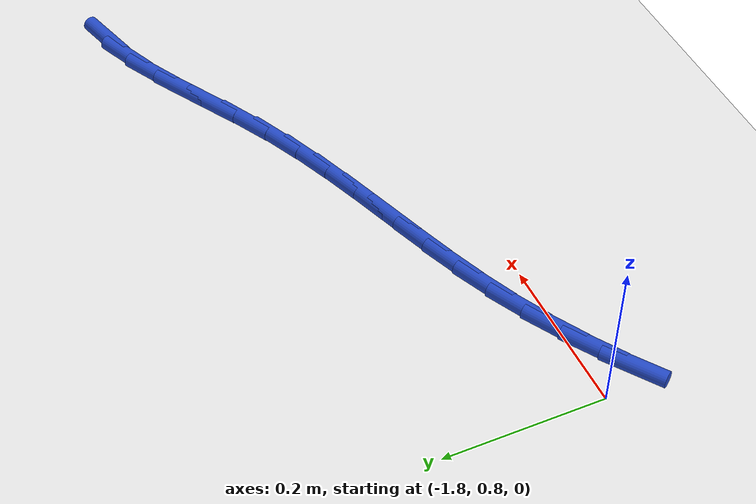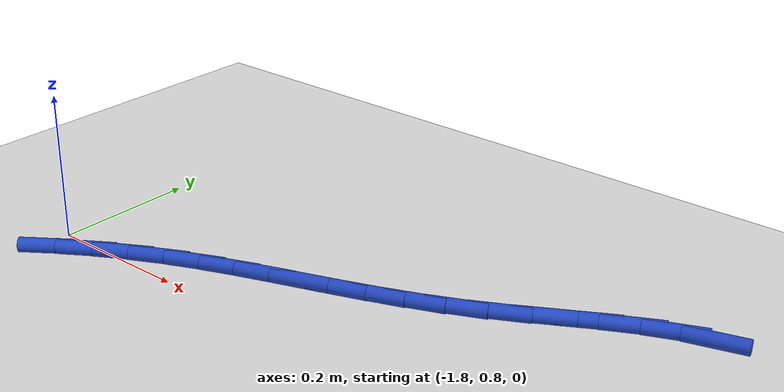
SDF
<sdf version="1.6">
 <world name="default">
  <model name="ground_plane">
   <static>1</static>
   <link name="link">
    <collision name="collision">
     <geometry><plane><normal>0 0 1</normal><size>100 100</size></plane></geometry>
     <surface><friction><ode><mu>100</mu><mu2>50</mu2></ode></friction></surface>
    </collision>
    <visual name="visual">
     <cast_shadows>0</cast_shadows>
     <geometry><plane><normal>0 0 1</normal><size>100 100</size></plane></geometry>
     <material>
      <script><uri>file://media/materials/scripts/gazebo.material</uri><name>Gazebo/WhiteGlow</name></script>
     </material>
    </visual>
   </link>
  </model>
  <model name="line">
   <link name="link_32">
    <pose>-1.0057121970503786 1.1083668834894598 0.01 0 1.57 0.28189544279777</pose>
    <collision name="collision">
     <geometry><cylinder><radius>0.01</radius><length>0.08</length></cylinder></geometry>
    </collision>
    <visual name="visual">
     <material>
      <script><name>Gazebo/Blue</name><uri>file://media/materials/scripts/gazebo.material</uri></script>
     </material>
     <geometry><cylinder><radius>0.01</radius><length>0.08</length></cylinder></geometry>
    </visual>
   </link>
   <link name="link_33">
    <pose>-1.0504984117781844 1.095396454453954 0.01 0 1.57 0.4111525332569541</pose>
    <collision name="collision">
     <geometry><cylinder><radius>0.01</radius><length>0.08</length></cylinder></geometry>
    </collision>
    <visual name="visual">
     <material>
      <script><name>Gazebo/Blue</name><uri>file://media/materials/scripts/gazebo.material</uri></script>
     </material>
     <geometry><cylinder><radius>0.01</radius><length>0.08</length></cylinder></geometry>
    </visual>
   </link>
   <link name="link_34">
    <pose>-1.0955383122451297 1.0757589612995089 0.01 0 1.57 0.48892258509568687</pose>
    <collision name="collision">
     <geometry><cylinder><radius>0.01</radius><length>0.08</length></cylinder></geometry>
    </collision>
    <visual name="visual">
     <material>
      <script><name>Gazebo/Blue</name><uri>file://media/materials/scripts/gazebo.material</uri></script>
     </material>
     <geometry><cylinder><radius>0.01</radius><length>0.08</length></cylinder></geometry>
    </visual>
   </link>
   <link name="link_35">
    <pose>-1.1408489743030474 1.0516534626045682 0.01 0 1.57 0.5243902109966839</pose>
    <collision name="collision">
     <geometry><cylinder><radius>0.01</radius><length>0.08</length></cylinder></geometry>
    </collision>
    <visual name="visual">
     <material>
      <script><name>Gazebo/Blue</name><uri>file://media/materials/scripts/gazebo.material</uri></script>
     </material>
     <geometry><cylinder><radius>0.01</radius><length>0.08</length></cylinder></geometry>
    </visual>
   </link>
   <link name="link_36">
    <pose>-1.1864474738037711 1.025279016947574 0.01 0 1.57 0.5226503911864777</pose>
    <collision name="collision">
     <geometry><cylinder><radius>0.01</radius><length>0.08</length></cylinder></geometry>
    </collision>
    <visual name="visual">
     <material>
      <script><name>Gazebo/Blue</name><uri>file://media/materials/scripts/gazebo.material</uri></script>
     </material>
     <geometry><cylinder><radius>0.01</radius><length>0.08</length></cylinder></geometry>
    </visual>
   </link>
   <link name="link_37">
    <pose>-1.2323508865991348 0.9988346829069699 0.01 0 1.57 0.4849000655583541</pose>
    <collision name="collision">
     <geometry><cylinder><radius>0.01</radius><length>0.08</length></cylinder></geometry>
    </collision>
    <visual name="visual">
     <material>
      <script><name>Gazebo/Blue</name><uri>file://media/materials/scripts/gazebo.material</uri></script>
     </material>
     <geometry><cylinder><radius>0.01</radius><length>0.08</length></cylinder></geometry>
    </visual>
   </link>
   <link name="link_38">
    <pose>-1.2785745339003312 0.9744815240795265 0.01 0 1.57 0.43073374836021844</pose>
    <collision name="collision">
     <geometry><cylinder><radius>0.01</radius><length>0.08</length></cylinder></geometry>
    </collision>
    <visual name="visual">
     <material>
      <script><name>Gazebo/Blue</name><uri>file://media/materials/scripts/gazebo.material</uri></script>
     </material>
     <geometry><cylinder><radius>0.01</radius><length>0.08</length></cylinder></geometry>
    </visual>
   </link>
   <link name="link_39">
    <pose>-1.3250752445395635 0.9531140103119103 0.01 0 1.57 0.3870451447340628</pose>
    <collision name="collision">
     <geometry><cylinder><radius>0.01</radius><length>0.08</length></cylinder></geometry>
    </collision>
    <visual name="visual">
     <material>
      <script><name>Gazebo/Blue</name><uri>file://media/materials/scripts/gazebo.material</uri></script>
     </material>
     <geometry><cylinder><radius>0.01</radius><length>0.08</length></cylinder></geometry>
    </visual>
   </link>
   <link name="link_40">
    <pose>-1.3717390520567645 0.934093610463802 0.01 0 1.57 0.35666571631247734</pose>
    <collision name="collision">
     <geometry><cylinder><radius>0.01</radius><length>0.08</length></cylinder></geometry>
    </collision>
    <visual name="visual">
     <material>
      <script><name>Gazebo/Blue</name><uri>file://media/materials/scripts/gazebo.material</uri></script>
     </material>
     <geometry><cylinder><radius>0.01</radius><length>0.08</length></cylinder></geometry>
    </visual>
   </link>
   <link name="link_41">
    <pose>-1.4184477466259169 0.9166899075648719 0.01 0 1.57 0.3403958233441304</pose>
    <collision name="collision">
     <geometry><cylinder><radius>0.01</radius><length>0.08</length></cylinder></geometry>
    </collision>
    <visual name="visual">
     <material>
      <script><name>Gazebo/Blue</name><uri>file://media/materials/scripts/gazebo.material</uri></script>
     </material>
     <geometry><cylinder><radius>0.01</radius><length>0.08</length></cylinder></geometry>
    </visual>
   </link>
   <link name="link_42">
    <pose>-1.465083118421002 0.9001724846447896 0.01 0 1.57 0.33871076461163846</pose>
    <collision name="collision">
     <geometry><cylinder><radius>0.01</radius><length>0.08</length></cylinder></geometry>
    </collision>
    <visual name="visual">
     <material>
      <script><name>Gazebo/Blue</name><uri>file://media/materials/scripts/gazebo.material</uri></script>
     </material>
     <geometry><cylinder><radius>0.01</radius><length>0.08</length></cylinder></geometry>
    </visual>
   </link>
   <link name="link_43">
    <pose>-1.5115269576160026 0.8838109247332249 0.01 0 1.57 0.35183220017087274</pose>
    <collision name="collision">
     <geometry><cylinder><radius>0.01</radius><length>0.08</length></cylinder></geometry>
    </collision>
    <visual name="visual">
     <material>
      <script><name>Gazebo/Blue</name><uri>file://media/materials/scripts/gazebo.material</uri></script>
     </material>
     <geometry><cylinder><radius>0.01</radius><length>0.08</length></cylinder></geometry>
    </visual>
   </link>
   <link name="link_44">
    <pose>-1.5576610543849017 0.8668748108598482 0.01 0 1.57 0.37972579258217887</pose>
    <collision name="collision">
     <geometry><cylinder><radius>0.01</radius><length>0.08</length></cylinder></geometry>
    </collision>
    <visual name="visual">
     <material>
      <script><name>Gazebo/Blue</name><uri>file://media/materials/scripts/gazebo.material</uri></script>
     </material>
     <geometry><cylinder><radius>0.01</radius><length>0.08</length></cylinder></geometry>
    </visual>
   </link>
   <link name="link_45">
    <pose>-1.6033671989016798 0.8486337260543294 0.01 0 1.57 0.4220101628515285</pose>
    <collision name="collision">
     <geometry><cylinder><radius>0.01</radius><length>0.08</length></cylinder></geometry>
    </collision>
    <visual name="visual">
     <material>
      <script><name>Gazebo/Blue</name><uri>file://media/materials/scripts/gazebo.material</uri></script>
     </material>
     <geometry><cylinder><radius>0.01</radius><length>0.08</length></cylinder></geometry>
    </visual>
   </link>
   <link name="link_46">
    <pose>-1.6485271398611026 0.8283575556630598 0.01 0 1.57 0.4741432422492783</pose>
    <collision name="collision">
     <geometry><cylinder><radius>0.01</radius><length>0.08</length></cylinder></geometry>
    </collision>
    <visual name="visual">
     <material>
      <script><name>Gazebo/Blue</name><uri>file://media/materials/scripts/gazebo.material</uri></script>
     </material>
     <geometry><cylinder><radius>0.01</radius><length>0.08</length></cylinder></geometry>
    </visual>
   </link>
   <link name="link_47">
    <pose>-1.6929921079084036 0.8055386124783781 0.01 0 1.57 0.525624349857981</pose>
    <collision name="collision">
     <geometry><cylinder><radius>0.01</radius><length>0.08</length></cylinder></geometry>
    </collision>
    <visual name="visual">
     <material>
      <script><name>Gazebo/Blue</name><uri>file://media/materials/scripts/gazebo.material</uri></script>
     </material>
     <geometry><cylinder><radius>0.01</radius><length>0.08</length></cylinder></geometry>
    </visual>
   </link>
   <link name="link_48">
    <pose>-1.7365288525371525 0.7802849408706761 0.01 0 1.57 0.5753820322733207</pose>
    <collision name="collision">
     <geometry><cylinder><radius>0.01</radius><length>0.08</length></cylinder></geometry>
    </collision>
    <visual name="visual">
     <material>
      <script><name>Gazebo/Blue</name><uri>file://media/materials/scripts/gazebo.material</uri></script>
     </material>
     <geometry><cylinder><radius>0.01</radius><length>0.08</length></cylinder></geometry>
    </visual>
   </link>
   <link name="link_49">
    <pose>-1.778889625922694 0.752810247319039 0.01 0 1.57 0.6241409652063513</pose>
    <collision name="collision">
     <geometry><cylinder><radius>0.01</radius><length>0.08</length></cylinder></geometry>
    </collision>
    <visual name="visual">
     <material>
      <script><name>Gazebo/Blue</name><uri>file://media/materials/scripts/gazebo.material</uri></script>
     </material>
     <geometry><cylinder><radius>0.01</radius><length>0.08</length></cylinder></geometry>
    </visual>
   </link>
  </model>
 </world>
</sdf>
